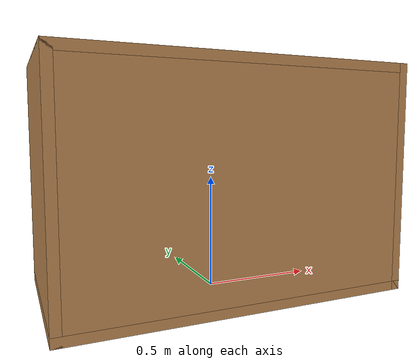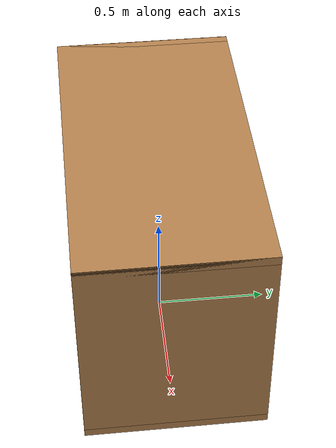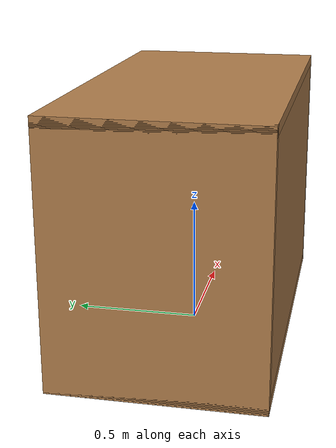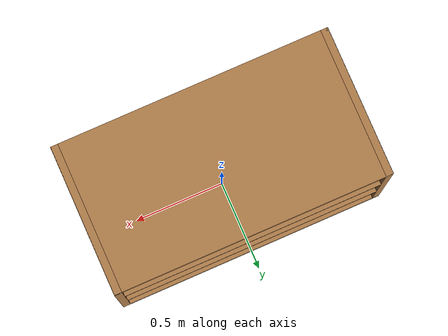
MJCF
<mujoco model="shelf">
	<asset>
		<texture file="../textures/light-wood.png" type="cube" name="light-wood" />
		<material name="MatLightWood" texture="light-wood" texrepeat="3 3" specular="0.4" shininess="0.1" />
	</asset>
	<worldbody>
		<body>
			<body name="object" pos="0 0 0">
				<body name="shelf" pos="0 0 0.5">
					<geom type="box" size="0.75 0.4 0.02" pos="0 0 -0.48" material="MatLightWood" group="0" />
					<geom type="box" size="0.75 0.4 0.02" pos="0 0 0.48" material="MatLightWood" group="0" />
					<geom type="box" size="0.02 0.4 0.5" pos="-0.73 0 0" material="MatLightWood" group="0" />
					<geom type="box" size="0.02 0.4 0.5" pos="0.73 0 0" material="MatLightWood" group="0" />
					<geom type="box" size="0.71 0.02 0.46" pos="0 -0.38 0" material="MatLightWood" group="0" />
					<geom type="box" size="0.71 0.38 0.01" pos="0 0.02 -0.15666666666666668" material="MatLightWood" group="0" />
					<geom type="box" size="0.71 0.38 0.01" pos="0 0.02 0.15666666666666668" material="MatLightWood" group="0" />
				</body>
				<inertial pos="0 0 0" mass="10" diaginertia="0.01 0.01 0.01" />
			</body>
		</body>
	</worldbody>
</mujoco>
